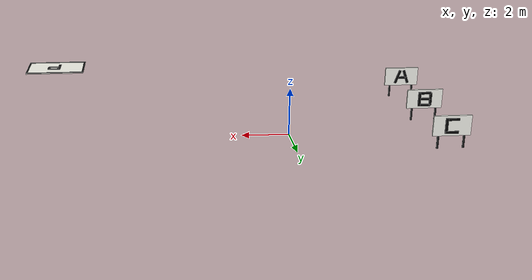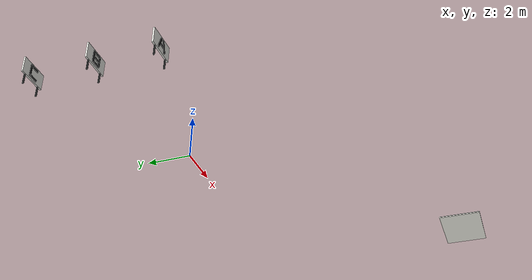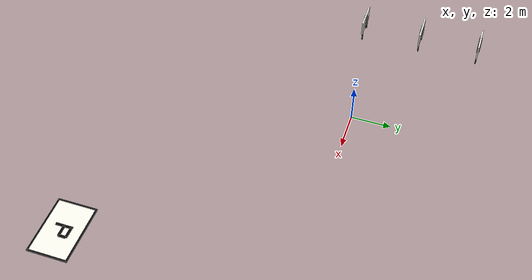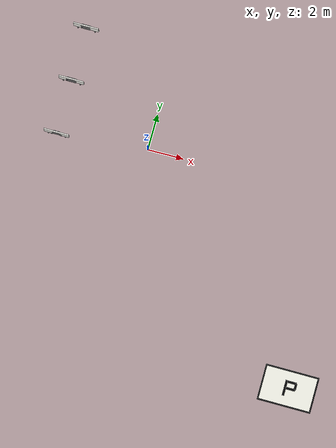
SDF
<?xml version="1.0"?>
<sdf version="1.9">
  <model name="storage_markers">
    <static>true</static>

    <frame name="pickup_A01"><pose>-6.25528 -1.94 0 0 0 1.5708</pose></frame>
    <frame name="pickup_A02"><pose>-5.03528 -1.94 0 0 0 1.5708</pose></frame>
    <frame name="pickup_A03"><pose>-4.31528 -1.94 0 0 0 1.5708</pose></frame>
    <frame name="pickup_B01"><pose>-6.25528 1.06 0 0 0 1.5708</pose></frame>
    <frame name="pickup_B02"><pose>-5.03528 1.06 0 0 0 1.5708</pose></frame>
    <frame name="pickup_B03"><pose>-4.31528 1.06 0 0 0 1.5708</pose></frame>
    <frame name="pickup_C01"><pose>-6.25528 4.06 0 0 0 1.5708</pose></frame>
    <frame name="pickup_C02"><pose>-5.03528 4.06 0 0 0 1.5708</pose></frame>
    <frame name="pickup_C03"><pose>-4.31528 4.06 0 0 0 1.5708</pose></frame>
    <frame name="dropoff_PACK01"><pose>10.80 -10.60 0 0 0 -1.5708</pose></frame>

    <!-- Clean white rack plates. The black glyph geometry is repeated and
         mirrored on the rear face, so codes remain readable from both aisles. -->
    <link name="storage_A_sign">
      <pose>-4.91528 -0.690987 2.25 0 0 0</pose>
      <visual name="board"><geometry><box><size>1.40 0.07 0.76</size></box></geometry><material><ambient>0.96 0.96 0.93 1</ambient><diffuse>0.96 0.96 0.93 1</diffuse></material></visual>
      <visual name="A_front_left"><pose>-0.17 -0.055 0 0 0.34 0</pose><geometry><box><size>0.10 0.035 0.58</size></box></geometry><material><ambient>0.01 0.01 0.01 1</ambient><diffuse>0.01 0.01 0.01 1</diffuse></material></visual>
      <visual name="A_front_right"><pose>0.17 -0.055 0 0 -0.34 0</pose><geometry><box><size>0.10 0.035 0.58</size></box></geometry><material><ambient>0.01 0.01 0.01 1</ambient><diffuse>0.01 0.01 0.01 1</diffuse></material></visual>
      <visual name="A_front_bar"><pose>0 -0.055 -0.04 0 0 0</pose><geometry><box><size>0.38 0.035 0.09</size></box></geometry><material><ambient>0.01 0.01 0.01 1</ambient><diffuse>0.01 0.01 0.01 1</diffuse></material></visual>
      <visual name="A_back_left"><pose>-0.17 0.055 0 0 0.34 0</pose><geometry><box><size>0.10 0.035 0.58</size></box></geometry><material><ambient>0.01 0.01 0.01 1</ambient><diffuse>0.01 0.01 0.01 1</diffuse></material></visual>
      <visual name="A_back_right"><pose>0.17 0.055 0 0 -0.34 0</pose><geometry><box><size>0.10 0.035 0.58</size></box></geometry><material><ambient>0.01 0.01 0.01 1</ambient><diffuse>0.01 0.01 0.01 1</diffuse></material></visual>
      <visual name="A_back_bar"><pose>0 0.055 -0.04 0 0 0</pose><geometry><box><size>0.38 0.035 0.09</size></box></geometry><material><ambient>0.01 0.01 0.01 1</ambient><diffuse>0.01 0.01 0.01 1</diffuse></material></visual>
      <visual name="left_mount"><pose>-0.48 0 -0.62 0 0 0</pose><geometry><box><size>0.06 0.06 0.50</size></box></geometry><material><ambient>0.02 0.02 0.02 1</ambient><diffuse>0.02 0.02 0.02 1</diffuse></material></visual>
      <visual name="right_mount"><pose>0.48 0 -0.62 0 0 0</pose><geometry><box><size>0.06 0.06 0.50</size></box></geometry><material><ambient>0.02 0.02 0.02 1</ambient><diffuse>0.02 0.02 0.02 1</diffuse></material></visual>
    </link>

    <link name="storage_B_sign">
      <pose>-4.91528 2.30697 2.25 0 0 0</pose>
      <visual name="board"><geometry><box><size>1.40 0.07 0.76</size></box></geometry><material><ambient>0.96 0.96 0.93 1</ambient><diffuse>0.96 0.96 0.93 1</diffuse></material></visual>
      <visual name="B_front_stem"><pose>-0.22 -0.055 0 0 0 0</pose><geometry><box><size>0.10 0.035 0.58</size></box></geometry><material><ambient>0.01 0.01 0.01 1</ambient><diffuse>0.01 0.01 0.01 1</diffuse></material></visual>
      <visual name="B_front_top"><pose>0 -0.055 0.245 0 0 0</pose><geometry><box><size>0.46 0.035 0.09</size></box></geometry><material><ambient>0.01 0.01 0.01 1</ambient><diffuse>0.01 0.01 0.01 1</diffuse></material></visual>
      <visual name="B_front_mid"><pose>0 -0.055 0 0 0 0</pose><geometry><box><size>0.46 0.035 0.09</size></box></geometry><material><ambient>0.01 0.01 0.01 1</ambient><diffuse>0.01 0.01 0.01 1</diffuse></material></visual>
      <visual name="B_front_bottom"><pose>0 -0.055 -0.245 0 0 0</pose><geometry><box><size>0.46 0.035 0.09</size></box></geometry><material><ambient>0.01 0.01 0.01 1</ambient><diffuse>0.01 0.01 0.01 1</diffuse></material></visual>
      <visual name="B_front_upper"><pose>0.22 -0.055 0.122 0 0 0</pose><geometry><box><size>0.10 0.035 0.25</size></box></geometry><material><ambient>0.01 0.01 0.01 1</ambient><diffuse>0.01 0.01 0.01 1</diffuse></material></visual>
      <visual name="B_front_lower"><pose>0.22 -0.055 -0.122 0 0 0</pose><geometry><box><size>0.10 0.035 0.25</size></box></geometry><material><ambient>0.01 0.01 0.01 1</ambient><diffuse>0.01 0.01 0.01 1</diffuse></material></visual>
      <visual name="B_back_stem"><pose>0.22 0.055 0 0 0 0</pose><geometry><box><size>0.10 0.035 0.58</size></box></geometry><material><ambient>0.01 0.01 0.01 1</ambient><diffuse>0.01 0.01 0.01 1</diffuse></material></visual>
      <visual name="B_back_top"><pose>0 0.055 0.245 0 0 0</pose><geometry><box><size>0.46 0.035 0.09</size></box></geometry><material><ambient>0.01 0.01 0.01 1</ambient><diffuse>0.01 0.01 0.01 1</diffuse></material></visual>
      <visual name="B_back_mid"><pose>0 0.055 0 0 0 0</pose><geometry><box><size>0.46 0.035 0.09</size></box></geometry><material><ambient>0.01 0.01 0.01 1</ambient><diffuse>0.01 0.01 0.01 1</diffuse></material></visual>
      <visual name="B_back_bottom"><pose>0 0.055 -0.245 0 0 0</pose><geometry><box><size>0.46 0.035 0.09</size></box></geometry><material><ambient>0.01 0.01 0.01 1</ambient><diffuse>0.01 0.01 0.01 1</diffuse></material></visual>
      <visual name="B_back_upper"><pose>-0.22 0.055 0.122 0 0 0</pose><geometry><box><size>0.10 0.035 0.25</size></box></geometry><material><ambient>0.01 0.01 0.01 1</ambient><diffuse>0.01 0.01 0.01 1</diffuse></material></visual>
      <visual name="B_back_lower"><pose>-0.22 0.055 -0.122 0 0 0</pose><geometry><box><size>0.10 0.035 0.25</size></box></geometry><material><ambient>0.01 0.01 0.01 1</ambient><diffuse>0.01 0.01 0.01 1</diffuse></material></visual>
      <visual name="left_mount"><pose>-0.48 0 -0.62 0 0 0</pose><geometry><box><size>0.06 0.06 0.50</size></box></geometry><material><ambient>0.02 0.02 0.02 1</ambient><diffuse>0.02 0.02 0.02 1</diffuse></material></visual>
      <visual name="right_mount"><pose>0.48 0 -0.62 0 0 0</pose><geometry><box><size>0.06 0.06 0.50</size></box></geometry><material><ambient>0.02 0.02 0.02 1</ambient><diffuse>0.02 0.02 0.02 1</diffuse></material></visual>
    </link>

    <link name="storage_C_sign">
      <pose>-4.91528 5.30708 2.25 0 0 0</pose>
      <visual name="board"><geometry><box><size>1.40 0.07 0.76</size></box></geometry><material><ambient>0.96 0.96 0.93 1</ambient><diffuse>0.96 0.96 0.93 1</diffuse></material></visual>
      <visual name="C_front_top"><pose>0 -0.055 0.245 0 0 0</pose><geometry><box><size>0.48 0.035 0.09</size></box></geometry><material><ambient>0.01 0.01 0.01 1</ambient><diffuse>0.01 0.01 0.01 1</diffuse></material></visual>
      <visual name="C_front_left"><pose>-0.22 -0.055 0 0 0 0</pose><geometry><box><size>0.10 0.035 0.58</size></box></geometry><material><ambient>0.01 0.01 0.01 1</ambient><diffuse>0.01 0.01 0.01 1</diffuse></material></visual>
      <visual name="C_front_bottom"><pose>0 -0.055 -0.245 0 0 0</pose><geometry><box><size>0.48 0.035 0.09</size></box></geometry><material><ambient>0.01 0.01 0.01 1</ambient><diffuse>0.01 0.01 0.01 1</diffuse></material></visual>
      <visual name="C_back_top"><pose>0 0.055 0.245 0 0 0</pose><geometry><box><size>0.48 0.035 0.09</size></box></geometry><material><ambient>0.01 0.01 0.01 1</ambient><diffuse>0.01 0.01 0.01 1</diffuse></material></visual>
      <visual name="C_back_right"><pose>0.22 0.055 0 0 0 0</pose><geometry><box><size>0.10 0.035 0.58</size></box></geometry><material><ambient>0.01 0.01 0.01 1</ambient><diffuse>0.01 0.01 0.01 1</diffuse></material></visual>
      <visual name="C_back_bottom"><pose>0 0.055 -0.245 0 0 0</pose><geometry><box><size>0.48 0.035 0.09</size></box></geometry><material><ambient>0.01 0.01 0.01 1</ambient><diffuse>0.01 0.01 0.01 1</diffuse></material></visual>
      <visual name="left_mount"><pose>-0.48 0 -0.62 0 0 0</pose><geometry><box><size>0.06 0.06 0.50</size></box></geometry><material><ambient>0.02 0.02 0.02 1</ambient><diffuse>0.02 0.02 0.02 1</diffuse></material></visual>
      <visual name="right_mount"><pose>0.48 0 -0.62 0 0 0</pose><geometry><box><size>0.06 0.06 0.50</size></box></geometry><material><ambient>0.02 0.02 0.02 1</ambient><diffuse>0.02 0.02 0.02 1</diffuse></material></visual>
    </link>

    <link name="packing_station">
      <pose>10.8 -10.6 0.035 0 0 0</pose>
      <visual name="base"><geometry><box><size>3.0 2.0 0.04</size></box></geometry><material><ambient>0.94 0.94 0.90 1</ambient><diffuse>0.94 0.94 0.90 1</diffuse></material></visual>
      <visual name="north"><pose>0 0.96 0.03 0 0 0</pose><geometry><box><size>3.0 0.08 0.025</size></box></geometry><material><ambient>0.01 0.01 0.01 1</ambient><diffuse>0.01 0.01 0.01 1</diffuse></material></visual>
      <visual name="south"><pose>0 -0.96 0.03 0 0 0</pose><geometry><box><size>3.0 0.08 0.025</size></box></geometry><material><ambient>0.01 0.01 0.01 1</ambient><diffuse>0.01 0.01 0.01 1</diffuse></material></visual>
      <visual name="east"><pose>1.46 0 0.03 0 0 0</pose><geometry><box><size>0.08 2.0 0.025</size></box></geometry><material><ambient>0.01 0.01 0.01 1</ambient><diffuse>0.01 0.01 0.01 1</diffuse></material></visual>
      <visual name="west"><pose>-1.46 0 0.03 0 0 0</pose><geometry><box><size>0.08 2.0 0.025</size></box></geometry><material><ambient>0.01 0.01 0.01 1</ambient><diffuse>0.01 0.01 0.01 1</diffuse></material></visual>
      <visual name="P_stem"><pose>-0.18 0 0.05 0 0 0</pose><geometry><box><size>0.12 0.85 0.035</size></box></geometry><material><ambient>0.01 0.01 0.01 1</ambient><diffuse>0.01 0.01 0.01 1</diffuse></material></visual>
      <visual name="P_top"><pose>0.10 0.36 0.05 0 0 0</pose><geometry><box><size>0.55 0.12 0.035</size></box></geometry><material><ambient>0.01 0.01 0.01 1</ambient><diffuse>0.01 0.01 0.01 1</diffuse></material></visual>
      <visual name="P_mid"><pose>0.10 0 0.05 0 0 0</pose><geometry><box><size>0.55 0.12 0.035</size></box></geometry><material><ambient>0.01 0.01 0.01 1</ambient><diffuse>0.01 0.01 0.01 1</diffuse></material></visual>
      <visual name="P_right"><pose>0.36 0.18 0.05 0 0 0</pose><geometry><box><size>0.12 0.36 0.035</size></box></geometry><material><ambient>0.01 0.01 0.01 1</ambient><diffuse>0.01 0.01 0.01 1</diffuse></material></visual>
    </link>

  </model>
</sdf>
